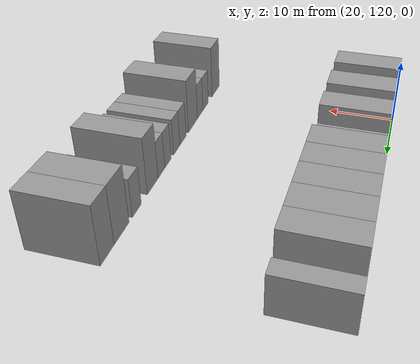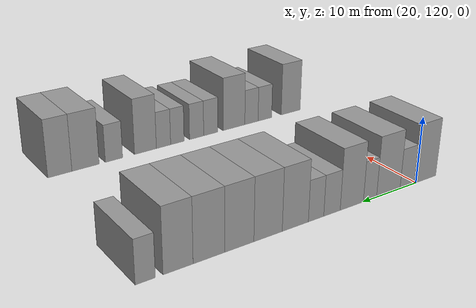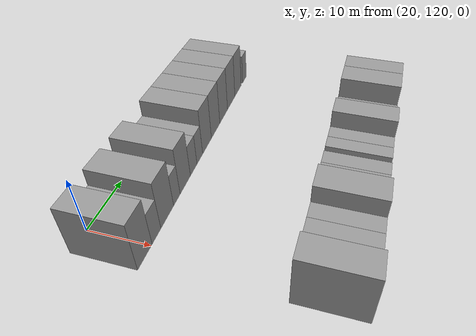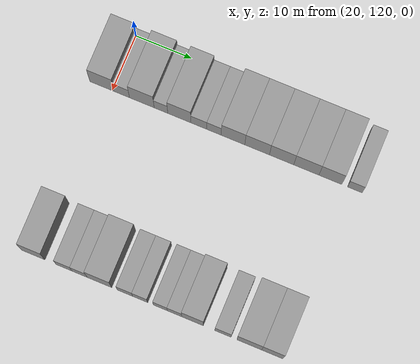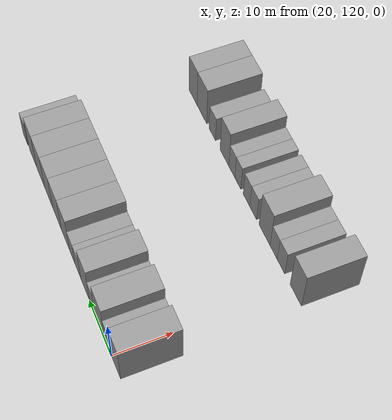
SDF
<sdf version="1.6">
 <world name="default">
  <model name="building_85">
   <static>1</static>
   <pose>25.0000 118.1588 0 0.000000 0.000000 0.000000</pose>
   <link name="link">
    <pose>0 0 4.50 0 0 0</pose>
    <collision name="collision"><geometry><box><size>10.0000 4.2819 9.0000</size></box></geometry></collision>
    <visual name="visual">
     <cast_shadows>0</cast_shadows>
     <geometry><box><size>10.0000 4.2819 9.0000</size></box></geometry>
     <material>
      <script>
       <uri>model://grey_wall/materials/scripts</uri>
       <uri>model://grey_wall/materials/textures</uri>
       <name>vrc/grey_wall</name>
      </script>
     </material>
    </visual>
   </link>
  </model>
  <model name="building_86">
   <static>1</static>
   <pose>25.0000 121.7034 0 0.000000 0.000000 0.000000</pose>
   <link name="link">
    <pose>0 0 3.00 0 0 0</pose>
    <collision name="collision"><geometry><box><size>10.0000 2.8073 6.0000</size></box></geometry></collision>
    <visual name="visual">
     <cast_shadows>0</cast_shadows>
     <geometry><box><size>10.0000 2.8073 6.0000</size></box></geometry>
     <material>
      <script>
       <uri>model://grey_wall/materials/scripts</uri>
       <uri>model://grey_wall/materials/textures</uri>
       <name>vrc/grey_wall</name>
      </script>
     </material>
    </visual>
   </link>
  </model>
  <model name="building_87">
   <static>1</static>
   <pose>25.0000 125.3158 0 0.000000 0.000000 0.000000</pose>
   <link name="link">
    <pose>0 0 4.50 0 0 0</pose>
    <collision name="collision"><geometry><box><size>10.0000 4.4175 9.0000</size></box></geometry></collision>
    <visual name="visual">
     <cast_shadows>0</cast_shadows>
     <geometry><box><size>10.0000 4.4175 9.0000</size></box></geometry>
     <material>
      <script>
       <uri>model://grey_wall/materials/scripts</uri>
       <uri>model://grey_wall/materials/textures</uri>
       <name>vrc/grey_wall</name>
      </script>
     </material>
    </visual>
   </link>
  </model>
  <model name="building_88">
   <static>1</static>
   <pose>25.0000 128.7336 0 0.000000 0.000000 0.000000</pose>
   <link name="link">
    <pose>0 0 3.00 0 0 0</pose>
    <collision name="collision"><geometry><box><size>10.0000 2.4181 6.0000</size></box></geometry></collision>
    <visual name="visual">
     <cast_shadows>0</cast_shadows>
     <geometry><box><size>10.0000 2.4181 6.0000</size></box></geometry>
     <material>
      <script>
       <uri>model://grey_wall/materials/scripts</uri>
       <uri>model://grey_wall/materials/textures</uri>
       <name>vrc/grey_wall</name>
      </script>
     </material>
    </visual>
   </link>
  </model>
  <model name="building_89">
   <static>1</static>
   <pose>25.0000 131.9948 0 0.000000 0.000000 0.000000</pose>
   <link name="link">
    <pose>0 0 4.50 0 0 0</pose>
    <collision name="collision"><geometry><box><size>10.0000 4.1043 9.0000</size></box></geometry></collision>
    <visual name="visual">
     <cast_shadows>0</cast_shadows>
     <geometry><box><size>10.0000 4.1043 9.0000</size></box></geometry>
     <material>
      <script>
       <uri>model://grey_wall/materials/scripts</uri>
       <uri>model://grey_wall/materials/textures</uri>
       <name>vrc/grey_wall</name>
      </script>
     </material>
    </visual>
   </link>
  </model>
  <model name="building_90">
   <static>1</static>
   <pose>25.0000 135.4542 0 0.000000 0.000000 0.000000</pose>
   <link name="link">
    <pose>0 0 3.00 0 0 0</pose>
    <collision name="collision"><geometry><box><size>10.0000 2.8145 6.0000</size></box></geometry></collision>
    <visual name="visual">
     <cast_shadows>0</cast_shadows>
     <geometry><box><size>10.0000 2.8145 6.0000</size></box></geometry>
     <material>
      <script>
       <uri>model://grey_wall/materials/scripts</uri>
       <uri>model://grey_wall/materials/textures</uri>
       <name>vrc/grey_wall</name>
      </script>
     </material>
    </visual>
   </link>
  </model>
  <model name="building_91">
   <static>1</static>
   <pose>25.0000 138.1438 0 0.000000 0.000000 0.000000</pose>
   <link name="link">
    <pose>0 0 3.00 0 0 0</pose>
    <collision name="collision"><geometry><box><size>10.0000 2.5646 6.0000</size></box></geometry></collision>
    <visual name="visual">
     <cast_shadows>0</cast_shadows>
     <geometry><box><size>10.0000 2.5646 6.0000</size></box></geometry>
     <material>
      <script>
       <uri>model://grey_wall/materials/scripts</uri>
       <uri>model://grey_wall/materials/textures</uri>
       <name>vrc/grey_wall</name>
      </script>
     </material>
    </visual>
   </link>
  </model>
  <model name="building_92">
   <static>1</static>
   <pose>25.0000 141.5321 0 0.000000 0.000000 0.000000</pose>
   <link name="link">
    <pose>0 0 4.50 0 0 0</pose>
    <collision name="collision"><geometry><box><size>10.0000 4.2118 9.0000</size></box></geometry></collision>
    <visual name="visual">
     <cast_shadows>0</cast_shadows>
     <geometry><box><size>10.0000 4.2118 9.0000</size></box></geometry>
     <material>
      <script>
       <uri>model://grey_wall/materials/scripts</uri>
       <uri>model://grey_wall/materials/textures</uri>
       <name>vrc/grey_wall</name>
      </script>
     </material>
    </visual>
   </link>
  </model>
  <model name="building_93">
   <static>1</static>
   <pose>25.0000 145.8253 0 0.000000 0.000000 0.000000</pose>
   <link name="link">
    <pose>0 0 4.50 0 0 0</pose>
    <collision name="collision"><geometry><box><size>10.0000 4.3747 9.0000</size></box></geometry></collision>
    <visual name="visual">
     <cast_shadows>0</cast_shadows>
     <geometry><box><size>10.0000 4.3747 9.0000</size></box></geometry>
     <material>
      <script>
       <uri>model://grey_wall/materials/scripts</uri>
       <uri>model://grey_wall/materials/textures</uri>
       <name>vrc/grey_wall</name>
      </script>
     </material>
    </visual>
   </link>
  </model>
  <model name="building_94">
   <static>1</static>
   <pose>25.0000 150.1693 0 0.000000 0.000000 0.000000</pose>
   <link name="link">
    <pose>0 0 4.50 0 0 0</pose>
    <collision name="collision"><geometry><box><size>10.0000 4.3133 9.0000</size></box></geometry></collision>
    <visual name="visual">
     <cast_shadows>0</cast_shadows>
     <geometry><box><size>10.0000 4.3133 9.0000</size></box></geometry>
     <material>
      <script>
       <uri>model://grey_wall/materials/scripts</uri>
       <uri>model://grey_wall/materials/textures</uri>
       <name>vrc/grey_wall</name>
      </script>
     </material>
    </visual>
   </link>
  </model>
  <model name="building_95">
   <static>1</static>
   <pose>25.0000 154.5454 0 0.000000 0.000000 0.000000</pose>
   <link name="link">
    <pose>0 0 4.50 0 0 0</pose>
    <collision name="collision"><geometry><box><size>10.0000 4.4389 9.0000</size></box></geometry></collision>
    <visual name="visual">
     <cast_shadows>0</cast_shadows>
     <geometry><box><size>10.0000 4.4389 9.0000</size></box></geometry>
     <material>
      <script>
       <uri>model://grey_wall/materials/scripts</uri>
       <uri>model://grey_wall/materials/textures</uri>
       <name>vrc/grey_wall</name>
      </script>
     </material>
    </visual>
   </link>
  </model>
  <model name="building_96">
   <static>1</static>
   <pose>25.0000 158.7840 0 0.000000 0.000000 0.000000</pose>
   <link name="link">
    <pose>0 0 4.50 0 0 0</pose>
    <collision name="collision"><geometry><box><size>10.0000 4.0382 9.0000</size></box></geometry></collision>
    <visual name="visual">
     <cast_shadows>0</cast_shadows>
     <geometry><box><size>10.0000 4.0382 9.0000</size></box></geometry>
     <material>
      <script>
       <uri>model://grey_wall/materials/scripts</uri>
       <uri>model://grey_wall/materials/textures</uri>
       <name>vrc/grey_wall</name>
      </script>
     </material>
    </visual>
   </link>
  </model>
  <model name="building_97">
   <static>1</static>
   <pose>25.0000 163.0999 0 0.000000 0.000000 0.000000</pose>
   <link name="link">
    <pose>0 0 3.00 0 0 0</pose>
    <collision name="collision"><geometry><box><size>10.0000 2.5938 6.0000</size></box></geometry></collision>
    <visual name="visual">
     <cast_shadows>0</cast_shadows>
     <geometry><box><size>10.0000 2.5938 6.0000</size></box></geometry>
     <material>
      <script>
       <uri>model://grey_wall/materials/scripts</uri>
       <uri>model://grey_wall/materials/textures</uri>
       <name>vrc/grey_wall</name>
      </script>
     </material>
    </visual>
   </link>
  </model>
  <model name="building_179">
   <static>1</static>
   <pose>55.0000 118.8618 0 0.000000 0.000000 0.000000</pose>
   <link name="link">
    <pose>0 0 4.50 0 0 0</pose>
    <collision name="collision"><geometry><box><size>10.0000 4.0774 9.0000</size></box></geometry></collision>
    <visual name="visual">
     <cast_shadows>0</cast_shadows>
     <geometry><box><size>10.0000 4.0774 9.0000</size></box></geometry>
     <material>
      <script>
       <uri>model://grey_wall/materials/scripts</uri>
       <uri>model://grey_wall/materials/textures</uri>
       <name>vrc/grey_wall</name>
      </script>
     </material>
    </visual>
   </link>
  </model>
  <model name="building_180">
   <static>1</static>
   <pose>55.0000 124.3030 0 0.000000 0.000000 0.000000</pose>
   <link name="link">
    <pose>0 0 3.00 0 0 0</pose>
    <collision name="collision"><geometry><box><size>10.0000 2.8049 6.0000</size></box></geometry></collision>
    <visual name="visual">
     <cast_shadows>0</cast_shadows>
     <geometry><box><size>10.0000 2.8049 6.0000</size></box></geometry>
     <material>
      <script>
       <uri>model://grey_wall/materials/scripts</uri>
       <uri>model://grey_wall/materials/textures</uri>
       <name>vrc/grey_wall</name>
      </script>
     </material>
    </visual>
   </link>
  </model>
  <model name="building_181">
   <static>1</static>
   <pose>55.0000 127.0494 0 0.000000 0.000000 0.000000</pose>
   <link name="link">
    <pose>0 0 3.00 0 0 0</pose>
    <collision name="collision"><geometry><box><size>10.0000 2.6879 6.0000</size></box></geometry></collision>
    <visual name="visual">
     <cast_shadows>0</cast_shadows>
     <geometry><box><size>10.0000 2.6879 6.0000</size></box></geometry>
     <material>
      <script>
       <uri>model://grey_wall/materials/scripts</uri>
       <uri>model://grey_wall/materials/textures</uri>
       <name>vrc/grey_wall</name>
      </script>
     </material>
    </visual>
   </link>
  </model>
  <model name="building_182">
   <static>1</static>
   <pose>55.0000 130.5399 0 0.000000 0.000000 0.000000</pose>
   <link name="link">
    <pose>0 0 4.50 0 0 0</pose>
    <collision name="collision"><geometry><box><size>10.0000 4.2931 9.0000</size></box></geometry></collision>
    <visual name="visual">
     <cast_shadows>0</cast_shadows>
     <geometry><box><size>10.0000 4.2931 9.0000</size></box></geometry>
     <material>
      <script>
       <uri>model://grey_wall/materials/scripts</uri>
       <uri>model://grey_wall/materials/textures</uri>
       <name>vrc/grey_wall</name>
      </script>
     </material>
    </visual>
   </link>
  </model>
  <model name="building_183">
   <static>1</static>
   <pose>55.0000 135.0408 0 0.000000 0.000000 0.000000</pose>
   <link name="link">
    <pose>0 0 3.00 0 0 0</pose>
    <collision name="collision"><geometry><box><size>10.0000 2.7088 6.0000</size></box></geometry></collision>
    <visual name="visual">
     <cast_shadows>0</cast_shadows>
     <geometry><box><size>10.0000 2.7088 6.0000</size></box></geometry>
     <material>
      <script>
       <uri>model://grey_wall/materials/scripts</uri>
       <uri>model://grey_wall/materials/textures</uri>
       <name>vrc/grey_wall</name>
      </script>
     </material>
    </visual>
   </link>
  </model>
  <model name="building_184">
   <static>1</static>
   <pose>55.0000 137.7053 0 0.000000 0.000000 0.000000</pose>
   <link name="link">
    <pose>0 0 3.00 0 0 0</pose>
    <collision name="collision"><geometry><box><size>10.0000 2.6202 6.0000</size></box></geometry></collision>
    <visual name="visual">
     <cast_shadows>0</cast_shadows>
     <geometry><box><size>10.0000 2.6202 6.0000</size></box></geometry>
     <material>
      <script>
       <uri>model://grey_wall/materials/scripts</uri>
       <uri>model://grey_wall/materials/textures</uri>
       <name>vrc/grey_wall</name>
      </script>
     </material>
    </visual>
   </link>
  </model>
  <model name="building_185">
   <static>1</static>
   <pose>55.0000 141.2347 0 0.000000 0.000000 0.000000</pose>
   <link name="link">
    <pose>0 0 3.00 0 0 0</pose>
    <collision name="collision"><geometry><box><size>10.0000 2.4386 6.0000</size></box></geometry></collision>
    <visual name="visual">
     <cast_shadows>0</cast_shadows>
     <geometry><box><size>10.0000 2.4386 6.0000</size></box></geometry>
     <material>
      <script>
       <uri>model://grey_wall/materials/scripts</uri>
       <uri>model://grey_wall/materials/textures</uri>
       <name>vrc/grey_wall</name>
      </script>
     </material>
    </visual>
   </link>
  </model>
  <model name="building_186">
   <static>1</static>
   <pose>55.0000 143.7174 0 0.000000 0.000000 0.000000</pose>
   <link name="link">
    <pose>0 0 3.00 0 0 0</pose>
    <collision name="collision"><geometry><box><size>10.0000 2.5268 6.0000</size></box></geometry></collision>
    <visual name="visual">
     <cast_shadows>0</cast_shadows>
     <geometry><box><size>10.0000 2.5268 6.0000</size></box></geometry>
     <material>
      <script>
       <uri>model://grey_wall/materials/scripts</uri>
       <uri>model://grey_wall/materials/textures</uri>
       <name>vrc/grey_wall</name>
      </script>
     </material>
    </visual>
   </link>
  </model>
  <model name="building_187">
   <static>1</static>
   <pose>55.0000 146.8673 0 0.000000 0.000000 0.000000</pose>
   <link name="link">
    <pose>0 0 4.50 0 0 0</pose>
    <collision name="collision"><geometry><box><size>10.0000 3.7731 9.0000</size></box></geometry></collision>
    <visual name="visual">
     <cast_shadows>0</cast_shadows>
     <geometry><box><size>10.0000 3.7731 9.0000</size></box></geometry>
     <material>
      <script>
       <uri>model://grey_wall/materials/scripts</uri>
       <uri>model://grey_wall/materials/textures</uri>
       <name>vrc/grey_wall</name>
      </script>
     </material>
    </visual>
   </link>
  </model>
  <model name="building_188">
   <static>1</static>
   <pose>55.0000 152.1804 0 0.000000 0.000000 0.000000</pose>
   <link name="link">
    <pose>0 0 3.00 0 0 0</pose>
    <collision name="collision"><geometry><box><size>10.0000 2.8532 6.0000</size></box></geometry></collision>
    <visual name="visual">
     <cast_shadows>0</cast_shadows>
     <geometry><box><size>10.0000 2.8532 6.0000</size></box></geometry>
     <material>
      <script>
       <uri>model://grey_wall/materials/scripts</uri>
       <uri>model://grey_wall/materials/textures</uri>
       <name>vrc/grey_wall</name>
      </script>
     </material>
    </visual>
   </link>
  </model>
  <model name="building_189">
   <static>1</static>
   <pose>55.0000 156.7653 0 0.000000 0.000000 0.000000</pose>
   <link name="link">
    <pose>0 0 4.50 0 0 0</pose>
    <collision name="collision"><geometry><box><size>10.0000 4.3166 9.0000</size></box></geometry></collision>
    <visual name="visual">
     <cast_shadows>0</cast_shadows>
     <geometry><box><size>10.0000 4.3166 9.0000</size></box></geometry>
     <material>
      <script>
       <uri>model://grey_wall/materials/scripts</uri>
       <uri>model://grey_wall/materials/textures</uri>
       <name>vrc/grey_wall</name>
      </script>
     </material>
    </visual>
   </link>
  </model>
  <model name="building_190">
   <static>1</static>
   <pose>55.0000 160.7802 0 0.000000 0.000000 0.000000</pose>
   <link name="link">
    <pose>0 0 4.50 0 0 0</pose>
    <collision name="collision"><geometry><box><size>10.0000 3.7132 9.0000</size></box></geometry></collision>
    <visual name="visual">
     <cast_shadows>0</cast_shadows>
     <geometry><box><size>10.0000 3.7132 9.0000</size></box></geometry>
     <material>
      <script>
       <uri>model://grey_wall/materials/scripts</uri>
       <uri>model://grey_wall/materials/textures</uri>
       <name>vrc/grey_wall</name>
      </script>
     </material>
    </visual>
   </link>
  </model>
 </world>
</sdf>
